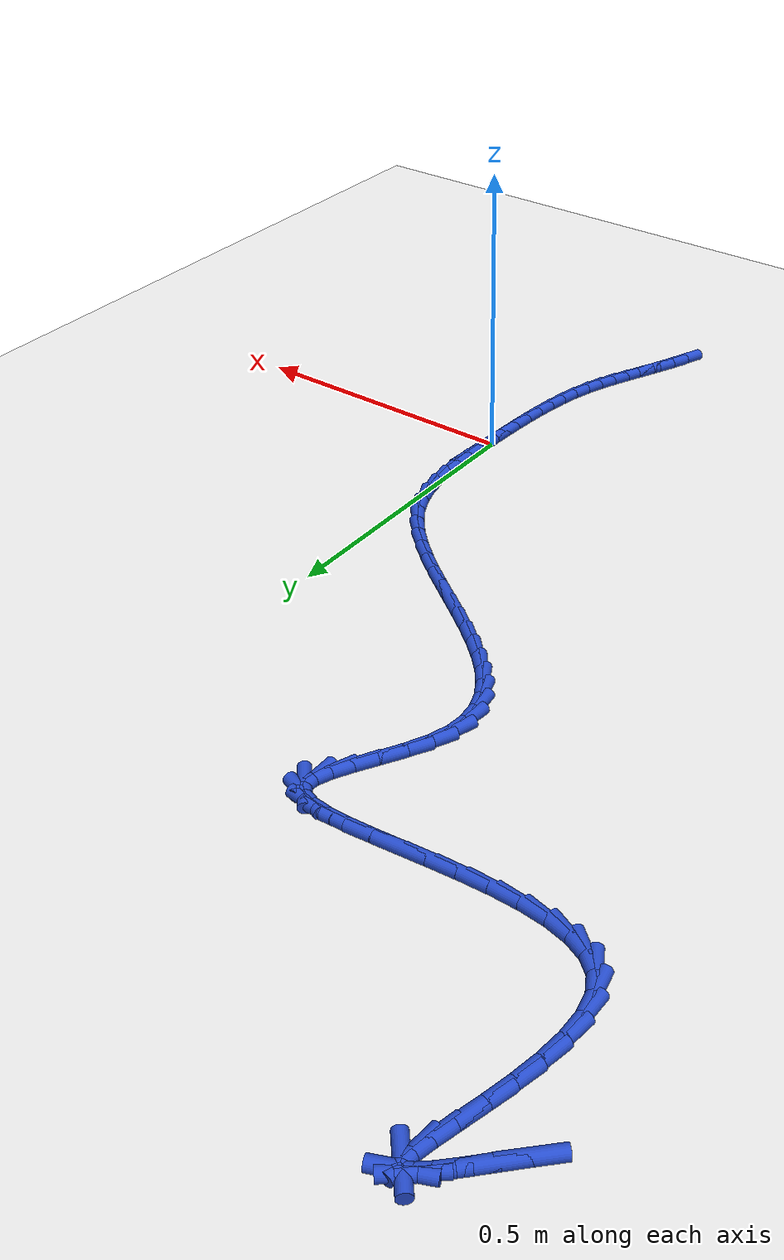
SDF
<sdf version="1.6">
 <world name="default">
  <model name="ground_plane">
   <static>1</static>
   <link name="link">
    <collision name="collision">
     <geometry><plane><normal>0 0 1</normal><size>100 100</size></plane></geometry>
     <surface><friction><ode><mu>100</mu><mu2>50</mu2></ode></friction></surface>
    </collision>
    <visual name="visual">
     <cast_shadows>0</cast_shadows>
     <geometry><plane><normal>0 0 1</normal><size>100 100</size></plane></geometry>
     <material>
      <script><uri>file://media/materials/scripts/gazebo.material</uri><name>Gazebo/WhiteGlow</name></script>
     </material>
    </visual>
   </link>
  </model>
  <model name="line">
   <link name="link_0">
    <pose>-8.673617379884035e-19 -2.0816681711721685e-17 0.01 0 1.57 1.5201943071209887</pose>
    <collision name="collision">
     <geometry><cylinder><radius>0.01</radius><length>0.08</length></cylinder></geometry>
    </collision>
    <visual name="visual">
     <material>
      <script><name>Gazebo/Blue</name><uri>file://media/materials/scripts/gazebo.material</uri></script>
     </material>
     <geometry><cylinder><radius>0.01</radius><length>0.08</length></cylinder></geometry>
    </visual>
   </link>
   <link name="link_1">
    <pose>0.001718137990329249 0.033924955631097306 0.01 0 1.57 1.5356808636149406</pose>
    <collision name="collision">
     <geometry><cylinder><radius>0.01</radius><length>0.08</length></cylinder></geometry>
    </collision>
    <visual name="visual">
     <material>
      <script><name>Gazebo/Blue</name><uri>file://media/materials/scripts/gazebo.material</uri></script>
     </material>
     <geometry><cylinder><radius>0.01</radius><length>0.08</length></cylinder></geometry>
    </visual>
   </link>
   <link name="link_2">
    <pose>0.0029085599110991543 0.0678112402299358 0.01 0 1.57 1.5683742261349907</pose>
    <collision name="collision">
     <geometry><cylinder><radius>0.01</radius><length>0.08</length></cylinder></geometry>
    </collision>
    <visual name="visual">
     <material>
      <script><name>Gazebo/Blue</name><uri>file://media/materials/scripts/gazebo.material</uri></script>
     </material>
     <geometry><cylinder><radius>0.01</radius><length>0.08</length></cylinder></geometry>
    </visual>
   </link>
   <link name="link_3">
    <pose>0.002990008500110478 0.1014384263683361 0.01 0 1.57 -1.5223005778639336</pose>
    <collision name="collision">
     <geometry><cylinder><radius>0.01</radius><length>0.08</length></cylinder></geometry>
    </collision>
    <visual name="visual">
     <material>
      <script><name>Gazebo/Blue</name><uri>file://media/materials/scripts/gazebo.material</uri></script>
     </material>
     <geometry><cylinder><radius>0.01</radius><length>0.08</length></cylinder></geometry>
    </visual>
   </link>
   <link name="link_4">
    <pose>0.0013812264951639846 0.13458608661811874 0.01 0 1.57 -1.4517762006851882</pose>
    <collision name="collision">
     <geometry><cylinder><radius>0.01</radius><length>0.08</length></cylinder></geometry>
    </collision>
    <visual name="visual">
     <material>
      <script><name>Gazebo/Blue</name><uri>file://media/materials/scripts/gazebo.material</uri></script>
     </material>
     <geometry><cylinder><radius>0.01</radius><length>0.08</length></cylinder></geometry>
    </visual>
   </link>
   <link name="link_5">
    <pose>-0.0024990433659395593 0.16703379355110443 0.01 0 1.57 -1.3603957612050444</pose>
    <collision name="collision">
     <geometry><cylinder><radius>0.01</radius><length>0.08</length></cylinder></geometry>
    </collision>
    <visual name="visual">
     <material>
      <script><name>Gazebo/Blue</name><uri>file://media/materials/scripts/gazebo.material</uri></script>
     </material>
     <geometry><cylinder><radius>0.01</radius><length>0.08</length></cylinder></geometry>
    </visual>
   </link>
   <link name="link_6">
    <pose>-0.009232058345399396 0.19856111973911383 0.01 0 1.57 -1.247915427071994</pose>
    <collision name="collision">
     <geometry><cylinder><radius>0.01</radius><length>0.08</length></cylinder></geometry>
    </collision>
    <visual name="visual">
     <material>
      <script><name>Gazebo/Blue</name><uri>file://media/materials/scripts/gazebo.material</uri></script>
     </material>
     <geometry><cylinder><radius>0.01</radius><length>0.08</length></cylinder></geometry>
    </visual>
   </link>
   <link name="link_7">
    <pose>-0.01939907570541475 0.22894763775396743 0.01 0 1.57 -1.1162956648636326</pose>
    <collision name="collision">
     <geometry><cylinder><radius>0.01</radius><length>0.08</length></cylinder></geometry>
    </collision>
    <visual name="visual">
     <material>
      <script><name>Gazebo/Blue</name><uri>file://media/materials/scripts/gazebo.material</uri></script>
     </material>
     <geometry><cylinder><radius>0.01</radius><length>0.08</length></cylinder></geometry>
    </visual>
   </link>
   <link name="link_8">
    <pose>-0.033581352708184874 0.25797292016748574 0.01 0 1.57 -0.9766780912579256</pose>
    <collision name="collision">
     <geometry><cylinder><radius>0.01</radius><length>0.08</length></cylinder></geometry>
    </collision>
    <visual name="visual">
     <material>
      <script><name>Gazebo/Blue</name><uri>file://media/materials/scripts/gazebo.material</uri></script>
     </material>
     <geometry><cylinder><radius>0.01</radius><length>0.08</length></cylinder></geometry>
    </visual>
   </link>
   <link name="link_9">
    <pose>-0.0521642981769794 0.28548134029088046 0.01 0 1.57 -0.8594447137796409</pose>
    <collision name="collision">
     <geometry><cylinder><radius>0.01</radius><length>0.08</length></cylinder></geometry>
    </collision>
    <visual name="visual">
     <material>
      <script><name>Gazebo/Blue</name><uri>file://media/materials/scripts/gazebo.material</uri></script>
     </material>
     <geometry><cylinder><radius>0.01</radius><length>0.08</length></cylinder></geometry>
    </visual>
   </link>
   <link name="link_10">
    <pose>-0.07467622980034888 0.3116008587825914 0.01 0 1.57 -0.7696369081644873</pose>
    <collision name="collision">
     <geometry><cylinder><radius>0.01</radius><length>0.08</length></cylinder></geometry>
    </collision>
    <visual name="visual">
     <material>
      <script><name>Gazebo/Blue</name><uri>file://media/materials/scripts/gazebo.material</uri></script>
     </material>
     <geometry><cylinder><radius>0.01</radius><length>0.08</length></cylinder></geometry>
    </visual>
   </link>
   <link name="link_11">
    <pose>-0.10041106726462837 0.33653699200657455 0.01 0 1.57 -0.7033495402415681</pose>
    <collision name="collision">
     <geometry><cylinder><radius>0.01</radius><length>0.08</length></cylinder></geometry>
    </collision>
    <visual name="visual">
     <material>
      <script><name>Gazebo/Blue</name><uri>file://media/materials/scripts/gazebo.material</uri></script>
     </material>
     <geometry><cylinder><radius>0.01</radius><length>0.08</length></cylinder></geometry>
    </visual>
   </link>
   <link name="link_12">
    <pose>-0.128662724489709 0.3604952582347396 0.01 0 1.57 -0.6569692025207479</pose>
    <collision name="collision">
     <geometry><cylinder><radius>0.01</radius><length>0.08</length></cylinder></geometry>
    </collision>
    <visual name="visual">
     <material>
      <script><name>Gazebo/Blue</name><uri>file://media/materials/scripts/gazebo.material</uri></script>
     </material>
     <geometry><cylinder><radius>0.01</radius><length>0.08</length></cylinder></geometry>
    </visual>
   </link>
   <link name="link_13">
    <pose>-0.15872511539548156 0.3836811757389963 0.01 0 1.57 -0.627791398620207</pose>
    <collision name="collision">
     <geometry><cylinder><radius>0.01</radius><length>0.08</length></cylinder></geometry>
    </collision>
    <visual name="visual">
     <material>
      <script><name>Gazebo/Blue</name><uri>file://media/materials/scripts/gazebo.material</uri></script>
     </material>
     <geometry><cylinder><radius>0.01</radius><length>0.08</length></cylinder></geometry>
    </visual>
   </link>
   <link name="link_14">
    <pose>-0.18989215390183722 0.4063002627912545 0.01 0 1.57 -0.6141590037104268</pose>
    <collision name="collision">
     <geometry><cylinder><radius>0.01</radius><length>0.08</length></cylinder></geometry>
    </collision>
    <visual name="visual">
     <material>
      <script><name>Gazebo/Blue</name><uri>file://media/materials/scripts/gazebo.material</uri></script>
     </material>
     <geometry><cylinder><radius>0.01</radius><length>0.08</length></cylinder></geometry>
    </visual>
   </link>
   <link name="link_15">
    <pose>-0.22145775392866693 0.42855803766342376 0.01 0 1.57 -0.6154623014193488</pose>
    <collision name="collision">
     <geometry><cylinder><radius>0.01</radius><length>0.08</length></cylinder></geometry>
    </collision>
    <visual name="visual">
     <material>
      <script><name>Gazebo/Blue</name><uri>file://media/materials/scripts/gazebo.material</uri></script>
     </material>
     <geometry><cylinder><radius>0.01</radius><length>0.08</length></cylinder></geometry>
    </visual>
   </link>
   <link name="link_16">
    <pose>-0.25271582939586185 0.4506600186274141 0.01 0 1.57 -0.6321558162892793</pose>
    <collision name="collision">
     <geometry><cylinder><radius>0.01</radius><length>0.08</length></cylinder></geometry>
    </collision>
    <visual name="visual">
     <material>
      <script><name>Gazebo/Blue</name><uri>file://media/materials/scripts/gazebo.material</uri></script>
     </material>
     <geometry><cylinder><radius>0.01</radius><length>0.08</length></cylinder></geometry>
    </visual>
   </link>
   <link name="link_17">
    <pose>-0.28296029422331276 0.4728117239551351 0.01 0 1.57 -0.665852831374529</pose>
    <collision name="collision">
     <geometry><cylinder><radius>0.01</radius><length>0.08</length></cylinder></geometry>
    </collision>
    <visual name="visual">
     <material>
      <script><name>Gazebo/Blue</name><uri>file://media/materials/scripts/gazebo.material</uri></script>
     </material>
     <geometry><cylinder><radius>0.01</radius><length>0.08</length></cylinder></geometry>
    </visual>
   </link>
   <link name="link_18">
    <pose>-0.3114850623309109 0.49521867191849667 0.01 0 1.57 -0.7195044284954116</pose>
    <collision name="collision">
     <geometry><cylinder><radius>0.01</radius><length>0.08</length></cylinder></geometry>
    </collision>
    <visual name="visual">
     <material>
      <script><name>Gazebo/Blue</name><uri>file://media/materials/scripts/gazebo.material</uri></script>
     </material>
     <geometry><cylinder><radius>0.01</radius><length>0.08</length></cylinder></geometry>
    </visual>
   </link>
   <link name="link_19">
    <pose>-0.3375840476385471 0.5180863807894086 0.01 0 1.57 -0.7975880576177107</pose>
    <collision name="collision">
     <geometry><cylinder><radius>0.01</radius><length>0.08</length></cylinder></geometry>
    </collision>
    <visual name="visual">
     <material>
      <script><name>Gazebo/Blue</name><uri>file://media/materials/scripts/gazebo.material</uri></script>
     </material>
     <geometry><cylinder><radius>0.01</radius><length>0.08</length></cylinder></geometry>
    </visual>
   </link>
   <link name="link_20">
    <pose>-0.3605511640661126 0.5416203688397805 0.01 0 1.57 -0.9060141525620757</pose>
    <collision name="collision">
     <geometry><cylinder><radius>0.01</radius><length>0.08</length></cylinder></geometry>
    </collision>
    <visual name="visual">
     <material>
      <script><name>Gazebo/Blue</name><uri>file://media/materials/scripts/gazebo.material</uri></script>
     </material>
     <geometry><cylinder><radius>0.01</radius><length>0.08</length></cylinder></geometry>
    </visual>
   </link>
   <link name="link_21">
    <pose>-0.37968032553349823 0.5660261543415224 0.01 0 1.57 -1.0509597911585271</pose>
    <collision name="collision">
     <geometry><cylinder><radius>0.01</radius><length>0.08</length></cylinder></geometry>
    </collision>
    <visual name="visual">
     <material>
      <script><name>Gazebo/Blue</name><uri>file://media/materials/scripts/gazebo.material</uri></script>
     </material>
     <geometry><cylinder><radius>0.01</radius><length>0.08</length></cylinder></geometry>
    </visual>
   </link>
   <link name="link_22">
    <pose>-0.39426544596059515 0.5915092555665439 0.01 0 1.57 -1.2352230891861422</pose>
    <collision name="collision">
     <geometry><cylinder><radius>0.01</radius><length>0.08</length></cylinder></geometry>
    </collision>
    <visual name="visual">
     <material>
      <script><name>Gazebo/Blue</name><uri>file://media/materials/scripts/gazebo.material</uri></script>
     </material>
     <geometry><cylinder><radius>0.01</radius><length>0.08</length></cylinder></geometry>
    </visual>
   </link>
   <link name="link_23">
    <pose>-0.4036004392672942 0.6182751907867547 0.01 0 1.57 -1.451776838935405</pose>
    <collision name="collision">
     <geometry><cylinder><radius>0.01</radius><length>0.08</length></cylinder></geometry>
    </collision>
    <visual name="visual">
     <material>
      <script><name>Gazebo/Blue</name><uri>file://media/materials/scripts/gazebo.material</uri></script>
     </material>
     <geometry><cylinder><radius>0.01</radius><length>0.08</length></cylinder></geometry>
    </visual>
   </link>
   <link name="link_24">
    <pose>-0.4069792193734867 0.6465294782740649 0.01 0 1.57 1.461592406780815</pose>
    <collision name="collision">
     <geometry><cylinder><radius>0.01</radius><length>0.08</length></cylinder></geometry>
    </collision>
    <visual name="visual">
     <material>
      <script><name>Gazebo/Blue</name><uri>file://media/materials/scripts/gazebo.material</uri></script>
     </material>
     <geometry><cylinder><radius>0.01</radius><length>0.08</length></cylinder></geometry>
    </visual>
   </link>
   <link name="link_25">
    <pose>-0.40369570019906315 0.6764776363003837 0.01 0 1.57 1.2510227166018464</pose>
    <collision name="collision">
     <geometry><cylinder><radius>0.01</radius><length>0.08</length></cylinder></geometry>
    </collision>
    <visual name="visual">
     <material>
      <script><name>Gazebo/Blue</name><uri>file://media/materials/scripts/gazebo.material</uri></script>
     </material>
     <geometry><cylinder><radius>0.01</radius><length>0.08</length></cylinder></geometry>
    </visual>
   </link>
   <link name="link_26">
    <pose>-0.3931671148218804 0.70827277879854 0.01 0 1.57 1.1098068839510666</pose>
    <collision name="collision">
     <geometry><cylinder><radius>0.01</radius><length>0.08</length></cylinder></geometry>
    </collision>
    <visual name="visual">
     <material>
      <script><name>Gazebo/Blue</name><uri>file://media/materials/scripts/gazebo.material</uri></script>
     </material>
     <geometry><cylinder><radius>0.01</radius><length>0.08</length></cylinder></geometry>
    </visual>
   </link>
   <link name="link_27">
    <pose>-0.37680191188064943 0.741221854862436 0.01 0 1.57 1.0406158870156996</pose>
    <collision name="collision">
     <geometry><cylinder><radius>0.01</radius><length>0.08</length></cylinder></geometry>
    </collision>
    <visual name="visual">
     <material>
      <script><name>Gazebo/Blue</name><uri>file://media/materials/scripts/gazebo.material</uri></script>
     </material>
     <geometry><cylinder><radius>0.01</radius><length>0.08</length></cylinder></geometry>
    </visual>
   </link>
   <link name="link_28">
    <pose>-0.3576196601141881 0.7739471698905402 0.01 0 1.57 1.0239956971512725</pose>
    <collision name="collision">
     <geometry><cylinder><radius>0.01</radius><length>0.08</length></cylinder></geometry>
    </collision>
    <visual name="visual">
     <material>
      <script><name>Gazebo/Blue</name><uri>file://media/materials/scripts/gazebo.material</uri></script>
     </material>
     <geometry><cylinder><radius>0.01</radius><length>0.08</length></cylinder></geometry>
    </visual>
   </link>
   <link name="link_29">
    <pose>-0.33868615756294174 0.8050513841909855 0.01 0 1.57 1.063269467934556</pose>
    <collision name="collision">
     <geometry><cylinder><radius>0.01</radius><length>0.08</length></cylinder></geometry>
    </collision>
    <visual name="visual">
     <material>
      <script><name>Gazebo/Blue</name><uri>file://media/materials/scripts/gazebo.material</uri></script>
     </material>
     <geometry><cylinder><radius>0.01</radius><length>0.08</length></cylinder></geometry>
    </visual>
   </link>
   <link name="link_30">
    <pose>-0.3230672022673562 0.8331371580719068 0.01 0 1.57 1.1986721337319537</pose>
    <collision name="collision">
     <geometry><cylinder><radius>0.01</radius><length>0.08</length></cylinder></geometry>
    </collision>
    <visual name="visual">
     <material>
      <script><name>Gazebo/Blue</name><uri>file://media/materials/scripts/gazebo.material</uri></script>
     </material>
     <geometry><cylinder><radius>0.01</radius><length>0.08</length></cylinder></geometry>
    </visual>
   </link>
   <link name="link_31">
    <pose>-0.31382859226787707 0.8568071518414377 0.01 0 1.57 -1.564745702820627</pose>
    <collision name="collision">
     <geometry><cylinder><radius>0.01</radius><length>0.08</length></cylinder></geometry>
    </collision>
    <visual name="visual">
     <material>
      <script><name>Gazebo/Blue</name><uri>file://media/materials/scripts/gazebo.material</uri></script>
     </material>
     <geometry><cylinder><radius>0.01</radius><length>0.08</length></cylinder></geometry>
    </visual>
   </link>
   <link name="link_32">
    <pose>-0.31393695750646217 0.8747166958196684 0.01 0 1.57 -0.8600478975879854</pose>
    <collision name="collision">
     <geometry><cylinder><radius>0.01</radius><length>0.08</length></cylinder></geometry>
    </collision>
    <visual name="visual">
     <material>
      <script><name>Gazebo/Blue</name><uri>file://media/materials/scripts/gazebo.material</uri></script>
     </material>
     <geometry><cylinder><radius>0.01</radius><length>0.08</length></cylinder></geometry>
    </visual>
   </link>
   <link name="link_33">
    <pose>-0.32421702462953694 0.8866587247973424 0.01 0 1.57 -0.3432603674694427</pose>
    <collision name="collision">
     <geometry><cylinder><radius>0.01</radius><length>0.08</length></cylinder></geometry>
    </collision>
    <visual name="visual">
     <material>
      <script><name>Gazebo/Blue</name><uri>file://media/materials/scripts/gazebo.material</uri></script>
     </material>
     <geometry><cylinder><radius>0.01</radius><length>0.08</length></cylinder></geometry>
    </visual>
   </link>
   <link name="link_34">
    <pose>-0.34342608718736506 0.893524225535088 0.01 0 1.57 -0.10127875479051505</pose>
    <collision name="collision">
     <geometry><cylinder><radius>0.01</radius><length>0.08</length></cylinder></geometry>
    </collision>
    <visual name="visual">
     <material>
      <script><name>Gazebo/Blue</name><uri>file://media/materials/scripts/gazebo.material</uri></script>
     </material>
     <geometry><cylinder><radius>0.01</radius><length>0.08</length></cylinder></geometry>
    </visual>
   </link>
   <link name="link_35">
    <pose>-0.3702371705185636 0.8962489411999063 0.01 0 1.57 0.014516430586478975</pose>
    <collision name="collision">
     <geometry><cylinder><radius>0.01</radius><length>0.08</length></cylinder></geometry>
    </collision>
    <visual name="visual">
     <material>
      <script><name>Gazebo/Blue</name><uri>file://media/materials/scripts/gazebo.material</uri></script>
     </material>
     <geometry><cylinder><radius>0.01</radius><length>0.08</length></cylinder></geometry>
    </visual>
   </link>
   <link name="link_36">
    <pose>-0.4033232999617488 0.895768614958798 0.01 0 1.57 0.07216793609204356</pose>
    <collision name="collision">
     <geometry><cylinder><radius>0.01</radius><length>0.08</length></cylinder></geometry>
    </collision>
    <visual name="visual">
     <material>
      <script><name>Gazebo/Blue</name><uri>file://media/materials/scripts/gazebo.material</uri></script>
     </material>
     <geometry><cylinder><radius>0.01</radius><length>0.08</length></cylinder></geometry>
    </visual>
   </link>
   <link name="link_37">
    <pose>-0.4413575008555378 0.893018989978764 0.01 0 1.57 0.09771092466176137</pose>
    <collision name="collision">
     <geometry><cylinder><radius>0.01</radius><length>0.08</length></cylinder></geometry>
    </collision>
    <visual name="visual">
     <material>
      <script><name>Gazebo/Blue</name><uri>file://media/materials/scripts/gazebo.material</uri></script>
     </material>
     <geometry><cylinder><radius>0.01</radius><length>0.08</length></cylinder></geometry>
    </visual>
   </link>
   <link name="link_38">
    <pose>-0.4830127985385472 0.8889358094268056 0.01 0 1.57 0.10160684340311654</pose>
    <collision name="collision">
     <geometry><cylinder><radius>0.01</radius><length>0.08</length></cylinder></geometry>
    </collision>
    <visual name="visual">
     <material>
      <script><name>Gazebo/Blue</name><uri>file://media/materials/scripts/gazebo.material</uri></script>
     </material>
     <geometry><cylinder><radius>0.01</radius><length>0.08</length></cylinder></geometry>
    </visual>
   </link>
   <link name="link_39">
    <pose>-0.5269622183493937 0.8844548164699227 0.01 0 1.57 0.08756189560972612</pose>
    <collision name="collision">
     <geometry><cylinder><radius>0.01</radius><length>0.08</length></cylinder></geometry>
    </collision>
    <visual name="visual">
     <material>
      <script><name>Gazebo/Blue</name><uri>file://media/materials/scripts/gazebo.material</uri></script>
     </material>
     <geometry><cylinder><radius>0.01</radius><length>0.08</length></cylinder></geometry>
    </visual>
   </link>
   <link name="link_40">
    <pose>-0.5718787856266938 0.8805117542751173 0.01 0 1.57 0.055364567964254596</pose>
    <collision name="collision">
     <geometry><cylinder><radius>0.01</radius><length>0.08</length></cylinder></geometry>
    </collision>
    <visual name="visual">
     <material>
      <script><name>Gazebo/Blue</name><uri>file://media/materials/scripts/gazebo.material</uri></script>
     </material>
     <geometry><cylinder><radius>0.01</radius><length>0.08</length></cylinder></geometry>
    </visual>
   </link>
   <link name="link_41">
    <pose>-0.6164355257090647 0.8780423660093895 0.01 0 1.57 0.001398908722775671</pose>
    <collision name="collision">
     <geometry><cylinder><radius>0.01</radius><length>0.08</length></cylinder></geometry>
    </collision>
    <visual name="visual">
     <material>
      <script><name>Gazebo/Blue</name><uri>file://media/materials/scripts/gazebo.material</uri></script>
     </material>
     <geometry><cylinder><radius>0.01</radius><length>0.08</length></cylinder></geometry>
    </visual>
   </link>
   <link name="link_42">
    <pose>-0.6593054639351227 0.87798239483974 0.01 0 1.57 -0.08224021591113025</pose>
    <collision name="collision">
     <geometry><cylinder><radius>0.01</radius><length>0.08</length></cylinder></geometry>
    </collision>
    <visual name="visual">
     <material>
      <script><name>Gazebo/Blue</name><uri>file://media/materials/scripts/gazebo.material</uri></script>
     </material>
     <geometry><cylinder><radius>0.01</radius><length>0.08</length></cylinder></geometry>
    </visual>
   </link>
   <link name="link_43">
    <pose>-0.699161625643485 0.8812675839331703 0.01 0 1.57 -0.20989902813836786</pose>
    <collision name="collision">
     <geometry><cylinder><radius>0.01</radius><length>0.08</length></cylinder></geometry>
    </collision>
    <visual name="visual">
     <material>
      <script><name>Gazebo/Blue</name><uri>file://media/materials/scripts/gazebo.material</uri></script>
     </material>
     <geometry><cylinder><radius>0.01</radius><length>0.08</length></cylinder></geometry>
    </visual>
   </link>
   <link name="link_44">
    <pose>-0.7346770361727677 0.8888336764566808 0.01 0 1.57 -0.4046334568544427</pose>
    <collision name="collision">
     <geometry><cylinder><radius>0.01</radius><length>0.08</length></cylinder></geometry>
    </collision>
    <visual name="visual">
     <material>
      <script><name>Gazebo/Blue</name><uri>file://media/materials/scripts/gazebo.material</uri></script>
     </material>
     <geometry><cylinder><radius>0.01</radius><length>0.08</length></cylinder></geometry>
    </visual>
   </link>
   <link name="link_45">
    <pose>-0.7645247208615878 0.9016164155772723 0.01 0 1.57 -0.691916170527639</pose>
    <collision name="collision">
     <geometry><cylinder><radius>0.01</radius><length>0.08</length></cylinder></geometry>
    </collision>
    <visual name="visual">
     <material>
      <script><name>Gazebo/Blue</name><uri>file://media/materials/scripts/gazebo.material</uri></script>
     </material>
     <geometry><cylinder><radius>0.01</radius><length>0.08</length></cylinder></geometry>
    </visual>
   </link>
   <link name="link_46">
    <pose>-0.7873777050485621 0.9205515444619459 0.01 0 1.57 -1.0583537056594072</pose>
    <collision name="collision">
     <geometry><cylinder><radius>0.01</radius><length>0.08</length></cylinder></geometry>
    </collision>
    <visual name="visual">
     <material>
      <script><name>Gazebo/Blue</name><uri>file://media/materials/scripts/gazebo.material</uri></script>
     </material>
     <geometry><cylinder><radius>0.01</radius><length>0.08</length></cylinder></geometry>
    </visual>
   </link>
   <link name="link_47">
    <pose>-0.8019790105620597 0.9465061917876808 0.01 0 1.57 -1.3720409962248215</pose>
    <collision name="collision">
     <geometry><cylinder><radius>0.01</radius><length>0.08</length></cylinder></geometry>
    </collision>
    <visual name="visual">
     <material>
      <script><name>Gazebo/Blue</name><uri>file://media/materials/scripts/gazebo.material</uri></script>
     </material>
     <geometry><cylinder><radius>0.01</radius><length>0.08</length></cylinder></geometry>
    </visual>
   </link>
   <link name="link_48">
    <pose>-0.8085109659351283 0.9789365969729197 0.01 0 1.57 1.570671844928276</pose>
    <collision name="collision">
     <geometry><cylinder><radius>0.01</radius><length>0.08</length></cylinder></geometry>
    </collision>
    <visual name="visual">
     <material>
      <script><name>Gazebo/Blue</name><uri>file://media/materials/scripts/gazebo.material</uri></script>
     </material>
     <geometry><cylinder><radius>0.01</radius><length>0.08</length></cylinder></geometry>
    </visual>
   </link>
   <link name="link_49">
    <pose>-0.8085063552997886 1.0159752070209616 0.01 0 1.57 1.4466847730902823</pose>
    <collision name="collision">
     <geometry><cylinder><radius>0.01</radius><length>0.08</length></cylinder></geometry>
    </collision>
    <visual name="visual">
     <material>
      <script><name>Gazebo/Blue</name><uri>file://media/materials/scripts/gazebo.material</uri></script>
     </material>
     <geometry><cylinder><radius>0.01</radius><length>0.08</length></cylinder></geometry>
    </visual>
   </link>
   <link name="link_50">
    <pose>-0.8035501664358974 1.055703295987915 0.01 0 1.57 1.3681116096140662</pose>
    <collision name="collision">
     <geometry><cylinder><radius>0.01</radius><length>0.08</length></cylinder></geometry>
    </collision>
    <visual name="visual">
     <material>
      <script><name>Gazebo/Blue</name><uri>file://media/materials/scripts/gazebo.material</uri></script>
     </material>
     <geometry><cylinder><radius>0.01</radius><length>0.08</length></cylinder></geometry>
    </visual>
   </link>
   <link name="link_51">
    <pose>-0.7952273871233129 1.096202137929888 0.01 0 1.57 1.3194499353170774</pose>
    <collision name="collision">
     <geometry><cylinder><radius>0.01</radius><length>0.08</length></cylinder></geometry>
    </collision>
    <visual name="visual">
     <material>
      <script><name>Gazebo/Blue</name><uri>file://media/materials/scripts/gazebo.material</uri></script>
     </material>
     <geometry><cylinder><radius>0.01</radius><length>0.08</length></cylinder></geometry>
    </visual>
   </link>
   <link name="link_52">
    <pose>-0.7851230051418924 1.1355530069029904 0.01 0 1.57 1.2941768440676495</pose>
    <collision name="collision">
     <geometry><cylinder><radius>0.01</radius><length>0.08</length></cylinder></geometry>
    </collision>
    <visual name="visual">
     <material>
      <script><name>Gazebo/Blue</name><uri>file://media/materials/scripts/gazebo.material</uri></script>
     </material>
     <geometry><cylinder><radius>0.01</radius><length>0.08</length></cylinder></geometry>
    </visual>
   </link>
   <link name="link_53">
    <pose>-0.7748220082714931 1.1718371769633291 0.01 0 1.57 1.2933793523130341</pose>
    <collision name="collision">
     <geometry><cylinder><radius>0.01</radius><length>0.08</length></cylinder></geometry>
    </collision>
    <visual name="visual">
     <material>
      <script><name>Gazebo/Blue</name><uri>file://media/materials/scripts/gazebo.material</uri></script>
     </material>
     <geometry><cylinder><radius>0.01</radius><length>0.08</length></cylinder></geometry>
    </visual>
   </link>
   <link name="link_54">
    <pose>-0.7659093842919726 1.203135922167014 0.01 0 1.57 1.3319763541267404</pose>
    <collision name="collision">
     <geometry><cylinder><radius>0.01</radius><length>0.08</length></cylinder></geometry>
    </collision>
    <visual name="visual">
     <material>
      <script><name>Gazebo/Blue</name><uri>file://media/materials/scripts/gazebo.material</uri></script>
     </material>
     <geometry><cylinder><radius>0.01</radius><length>0.08</length></cylinder></geometry>
    </visual>
   </link>
   <link name="link_55">
    <pose>-0.7599701209831887 1.2275305165701527 0.01 0 1.57 1.4823467483856345</pose>
    <collision name="collision">
     <geometry><cylinder><radius>0.01</radius><length>0.08</length></cylinder></geometry>
    </collision>
    <visual name="visual">
     <material>
      <script><name>Gazebo/Blue</name><uri>file://media/materials/scripts/gazebo.material</uri></script>
     </material>
     <geometry><cylinder><radius>0.01</radius><length>0.08</length></cylinder></geometry>
    </visual>
   </link>
   <link name="link_56">
    <pose>-0.7585892061249982 1.2431022342288536 0.01 0 1.57 -0.8506377276693793</pose>
    <collision name="collision">
     <geometry><cylinder><radius>0.01</radius><length>0.08</length></cylinder></geometry>
    </collision>
    <visual name="visual">
     <material>
      <script><name>Gazebo/Blue</name><uri>file://media/materials/scripts/gazebo.material</uri></script>
     </material>
     <geometry><cylinder><radius>0.01</radius><length>0.08</length></cylinder></geometry>
    </visual>
   </link>
   <link name="link_57">
    <pose>-0.763131385225953 1.2482794003074016 0.01 0 1.57 0.41182475326074186</pose>
    <collision name="collision">
     <geometry><cylinder><radius>0.01</radius><length>0.08</length></cylinder></geometry>
    </collision>
    <visual name="visual">
     <material>
      <script><name>Gazebo/Blue</name><uri>file://media/materials/scripts/gazebo.material</uri></script>
     </material>
     <geometry><cylinder><radius>0.01</radius><length>0.08</length></cylinder></geometry>
    </visual>
   </link>
   <link name="link_58">
    <pose>-0.7735375877520306 1.2437339462155288 0.01 0 1.57 0.6820222823260549</pose>
    <collision name="collision">
     <geometry><cylinder><radius>0.01</radius><length>0.08</length></cylinder></geometry>
    </collision>
    <visual name="visual">
     <material>
      <script><name>Gazebo/Blue</name><uri>file://media/materials/scripts/gazebo.material</uri></script>
     </material>
     <geometry><cylinder><radius>0.01</radius><length>0.08</length></cylinder></geometry>
    </visual>
   </link>
   <link name="link_59">
    <pose>-0.7891824684333627 1.2310301219603068 0.01 0 1.57 0.7611034894928629</pose>
    <collision name="collision">
     <geometry><cylinder><radius>0.01</radius><length>0.08</length></cylinder></geometry>
    </collision>
    <visual name="visual">
     <material>
      <script><name>Gazebo/Blue</name><uri>file://media/materials/scripts/gazebo.material</uri></script>
     </material>
     <geometry><cylinder><radius>0.01</radius><length>0.08</length></cylinder></geometry>
    </visual>
   </link>
   <link name="link_60">
    <pose>-0.8094392346653811 1.2117344582150462 0.01 0 1.57 0.7870272552570731</pose>
    <collision name="collision">
     <geometry><cylinder><radius>0.01</radius><length>0.08</length></cylinder></geometry>
    </collision>
    <visual name="visual">
     <material>
      <script><name>Gazebo/Blue</name><uri>file://media/materials/scripts/gazebo.material</uri></script>
     </material>
     <geometry><cylinder><radius>0.01</radius><length>0.08</length></cylinder></geometry>
    </visual>
   </link>
   <link name="link_61">
    <pose>-0.833681093843516 1.1874134856530558 0.01 0 1.57 0.7886410461585955</pose>
    <collision name="collision">
     <geometry><cylinder><radius>0.01</radius><length>0.08</length></cylinder></geometry>
    </collision>
    <visual name="visual">
     <material>
      <script><name>Gazebo/Blue</name><uri>file://media/materials/scripts/gazebo.material</uri></script>
     </material>
     <geometry><cylinder><radius>0.01</radius><length>0.08</length></cylinder></geometry>
    </visual>
   </link>
   <link name="link_62">
    <pose>-0.8612812533631987 1.1596337349476455 0.01 0 1.57 0.7744047932160668</pose>
    <collision name="collision">
     <geometry><cylinder><radius>0.01</radius><length>0.08</length></cylinder></geometry>
    </collision>
    <visual name="visual">
     <material>
      <script><name>Gazebo/Blue</name><uri>file://media/materials/scripts/gazebo.material</uri></script>
     </material>
     <geometry><cylinder><radius>0.01</radius><length>0.08</length></cylinder></geometry>
    </visual>
   </link>
   <link name="link_225">
    <pose>-0.12173339739956698 -0.4647992913917281 0.01 0 1.57 1.187689657200184</pose>
    <collision name="collision">
     <geometry><cylinder><radius>0.01</radius><length>0.08</length></cylinder></geometry>
    </collision>
    <visual name="visual">
     <material>
      <script><name>Gazebo/Blue</name><uri>file://media/materials/scripts/gazebo.material</uri></script>
     </material>
     <geometry><cylinder><radius>0.01</radius><length>0.08</length></cylinder></geometry>
    </visual>
   </link>
   <link name="link_226">
    <pose>-0.1090197941145713 -0.4332534140721019 0.01 0 1.57 1.154413427374456</pose>
    <collision name="collision">
     <geometry><cylinder><radius>0.01</radius><length>0.08</length></cylinder></geometry>
    </collision>
    <visual name="visual">
     <material>
      <script><name>Gazebo/Blue</name><uri>file://media/materials/scripts/gazebo.material</uri></script>
     </material>
     <geometry><cylinder><radius>0.01</radius><length>0.08</length></cylinder></geometry>
    </visual>
   </link>
   <link name="link_227">
    <pose>-0.09562401299680377 -0.40296273812253736 0.01 0 1.57 1.1363186023560996</pose>
    <collision name="collision">
     <geometry><cylinder><radius>0.01</radius><length>0.08</length></cylinder></geometry>
    </collision>
    <visual name="visual">
     <material>
      <script><name>Gazebo/Blue</name><uri>file://media/materials/scripts/gazebo.material</uri></script>
     </material>
     <geometry><cylinder><radius>0.01</radius><length>0.08</length></cylinder></geometry>
    </visual>
   </link>
   <link name="link_228">
    <pose>-0.08198553915364443 -0.3735727534596626 0.01 0 1.57 1.1347033917593565</pose>
    <collision name="collision">
     <geometry><cylinder><radius>0.01</radius><length>0.08</length></cylinder></geometry>
    </collision>
    <visual name="visual">
     <material>
      <script><name>Gazebo/Blue</name><uri>file://media/materials/scripts/gazebo.material</uri></script>
     </material>
     <geometry><cylinder><radius>0.01</radius><length>0.08</length></cylinder></geometry>
    </visual>
   </link>
   <link name="link_229">
    <pose>-0.06854385769247315 -0.3447289500001055 0.01 0 1.57 1.1505010670607867</pose>
    <collision name="collision">
     <geometry><cylinder><radius>0.01</radius><length>0.08</length></cylinder></geometry>
    </collision>
    <visual name="visual">
     <material>
      <script><name>Gazebo/Blue</name><uri>file://media/materials/scripts/gazebo.material</uri></script>
     </material>
     <geometry><cylinder><radius>0.01</radius><length>0.08</length></cylinder></geometry>
    </visual>
   </link>
   <link name="link_230">
    <pose>-0.05573845372066951 -0.3160768176604929 0.01 0 1.57 1.1842120736435884</pose>
    <collision name="collision">
     <geometry><cylinder><radius>0.01</radius><length>0.08</length></cylinder></geometry>
    </collision>
    <visual name="visual">
     <material>
      <script><name>Gazebo/Blue</name><uri>file://media/materials/scripts/gazebo.material</uri></script>
     </material>
     <geometry><cylinder><radius>0.01</radius><length>0.08</length></cylinder></geometry>
    </visual>
   </link>
   <link name="link_231">
    <pose>-0.04400881234561414 -0.28726184635745433 0.01 0 1.57 1.235699107155119</pose>
    <collision name="collision">
     <geometry><cylinder><radius>0.01</radius><length>0.08</length></cylinder></geometry>
    </collision>
    <visual name="visual">
     <material>
      <script><name>Gazebo/Blue</name><uri>file://media/materials/scripts/gazebo.material</uri></script>
     </material>
     <geometry><cylinder><radius>0.01</radius><length>0.08</length></cylinder></geometry>
    </visual>
   </link>
   <link name="link_232">
    <pose>-0.03379441559315607 -0.2579295279746222 0.01 0 1.57 1.2993228170275029</pose>
    <collision name="collision">
     <geometry><cylinder><radius>0.01</radius><length>0.08</length></cylinder></geometry>
    </collision>
    <visual name="visual">
     <material>
      <script><name>Gazebo/Blue</name><uri>file://media/materials/scripts/gazebo.material</uri></script>
     </material>
     <geometry><cylinder><radius>0.01</radius><length>0.08</length></cylinder></geometry>
    </visual>
   </link>
   <link name="link_233">
    <pose>-0.025409485519665827 -0.22780531044975044 0.01 0 1.57 1.3572845698556715</pose>
    <collision name="collision">
     <geometry><cylinder><radius>0.01</radius><length>0.08</length></cylinder></geometry>
    </collision>
    <visual name="visual">
     <material>
      <script><name>Gazebo/Blue</name><uri>file://media/materials/scripts/gazebo.material</uri></script>
     </material>
     <geometry><cylinder><radius>0.01</radius><length>0.08</length></cylinder></geometry>
    </visual>
   </link>
   <link name="link_234">
    <pose>-0.018710223172969838 -0.19690700609446463 0.01 0 1.57 1.4057269883322225</pose>
    <collision name="collision">
     <geometry><cylinder><radius>0.01</radius><length>0.08</length></cylinder></geometry>
    </collision>
    <visual name="visual">
     <material>
      <script><name>Gazebo/Blue</name><uri>file://media/materials/scripts/gazebo.material</uri></script>
     </material>
     <geometry><cylinder><radius>0.01</radius><length>0.08</length></cylinder></geometry>
    </visual>
   </link>
   <link name="link_235">
    <pose>-0.013448170136006079 -0.1653192335422637 0.01 0 1.57 1.444936082830116</pose>
    <collision name="collision">
     <geometry><cylinder><radius>0.01</radius><length>0.08</length></cylinder></geometry>
    </collision>
    <visual name="visual">
     <material>
      <script><name>Gazebo/Blue</name><uri>file://media/materials/scripts/gazebo.material</uri></script>
     </material>
     <geometry><cylinder><radius>0.01</radius><length>0.08</length></cylinder></geometry>
    </visual>
   </link>
   <link name="link_236">
    <pose>-0.009374867991712532 -0.1331266114266469 0.01 0 1.57 1.4753145023505676</pose>
    <collision name="collision">
     <geometry><cylinder><radius>0.01</radius><length>0.08</length></cylinder></geometry>
    </collision>
    <visual name="visual">
     <material>
      <script><name>Gazebo/Blue</name><uri>file://media/materials/scripts/gazebo.material</uri></script>
     </material>
     <geometry><cylinder><radius>0.01</radius><length>0.08</length></cylinder></geometry>
    </visual>
   </link>
   <link name="link_237">
    <pose>-0.006241858323027171 -0.10041375838111306 0.01 0 1.57 1.4972853290026849</pose>
    <collision name="collision">
     <geometry><cylinder><radius>0.01</radius><length>0.08</length></cylinder></geometry>
    </collision>
    <visual name="visual">
     <material>
      <script><name>Gazebo/Blue</name><uri>file://media/materials/scripts/gazebo.material</uri></script>
     </material>
     <geometry><cylinder><radius>0.01</radius><length>0.08</length></cylinder></geometry>
    </visual>
   </link>
   <link name="link_238">
    <pose>-0.003800682712887928 -0.06726529303916057 0.01 0 1.57 1.5112300935855951</pose>
    <collision name="collision">
     <geometry><cylinder><radius>0.01</radius><length>0.08</length></cylinder></geometry>
    </collision>
    <visual name="visual">
     <material>
      <script><name>Gazebo/Blue</name><uri>file://media/materials/scripts/gazebo.material</uri></script>
     </material>
     <geometry><cylinder><radius>0.01</radius><length>0.08</length></cylinder></geometry>
    </visual>
   </link>
   <link name="link_239">
    <pose>-0.0018028827442329053 -0.033765834034290225 0.01 0 1.57 1.5174532820057094</pose>
    <collision name="collision">
     <geometry><cylinder><radius>0.01</radius><length>0.08</length></cylinder></geometry>
    </collision>
    <visual name="visual">
     <material>
      <script><name>Gazebo/Blue</name><uri>file://media/materials/scripts/gazebo.material</uri></script>
     </material>
     <geometry><cylinder><radius>0.01</radius><length>0.08</length></cylinder></geometry>
    </visual>
   </link>
   <link name="link_240">
    <pose>-1.0842021724855044e-17 -2.220446049250313e-16 0.01 0 1.57 1.516165741446577</pose>
    <collision name="collision">
     <geometry><cylinder><radius>0.01</radius><length>0.08</length></cylinder></geometry>
    </collision>
    <visual name="visual">
     <material>
      <script><name>Gazebo/Blue</name><uri>file://media/materials/scripts/gazebo.material</uri></script>
     </material>
     <geometry><cylinder><radius>0.01</radius><length>0.08</length></cylinder></geometry>
    </visual>
   </link>
   <link name="link_241">
    <pose>0.0018564239368727732 0.03394759043021033 0.01 0 1.57 1.5074814267406753</pose>
    <collision name="collision">
     <geometry><cylinder><radius>0.01</radius><length>0.08</length></cylinder></geometry>
    </collision>
    <visual name="visual">
     <material>
      <script><name>Gazebo/Blue</name><uri>file://media/materials/scripts/gazebo.material</uri></script>
     </material>
     <geometry><cylinder><radius>0.01</radius><length>0.08</length></cylinder></geometry>
    </visual>
   </link>
   <link name="link_242">
    <pose>0.004014847483447468 0.06799231862284241 0.01 0 1.57 1.5118162674036177</pose>
    <collision name="collision">
     <geometry><cylinder><radius>0.01</radius><length>0.08</length></cylinder></geometry>
    </collision>
    <visual name="visual">
     <material>
      <script><name>Gazebo/Blue</name><uri>file://media/materials/scripts/gazebo.material</uri></script>
     </material>
     <geometry><cylinder><radius>0.01</radius><length>0.08</length></cylinder></geometry>
    </visual>
   </link>
  </model>
 </world>
</sdf>
